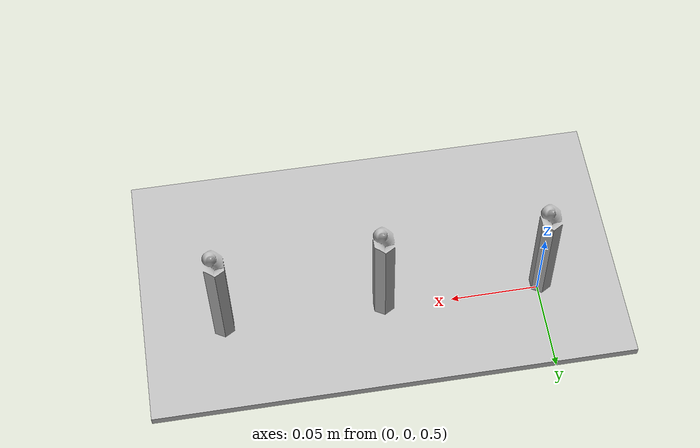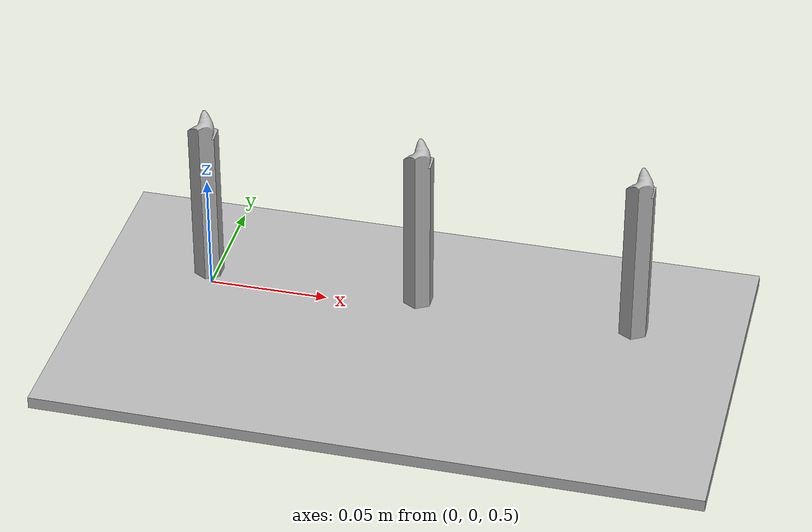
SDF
<?xml version='1.0'?>
<sdf version='1.6'>
<model name ='stage'>
  <static>true</static>
  <pose>0 0 0.5 0 0 0</pose>
    <link name='link'>
      <collision name='colision'>
        <geometry>
          <mesh>
            <uri>model://stage/stage.dae</uri>
          </mesh>
        </geometry>
      </collision>
      <visual name='visual'>
        <geometry>
          <mesh>
            <uri>model://stage/stage.dae</uri>
          </mesh>
        </geometry>
      </visual>
    </link>
  </model>
</sdf>
